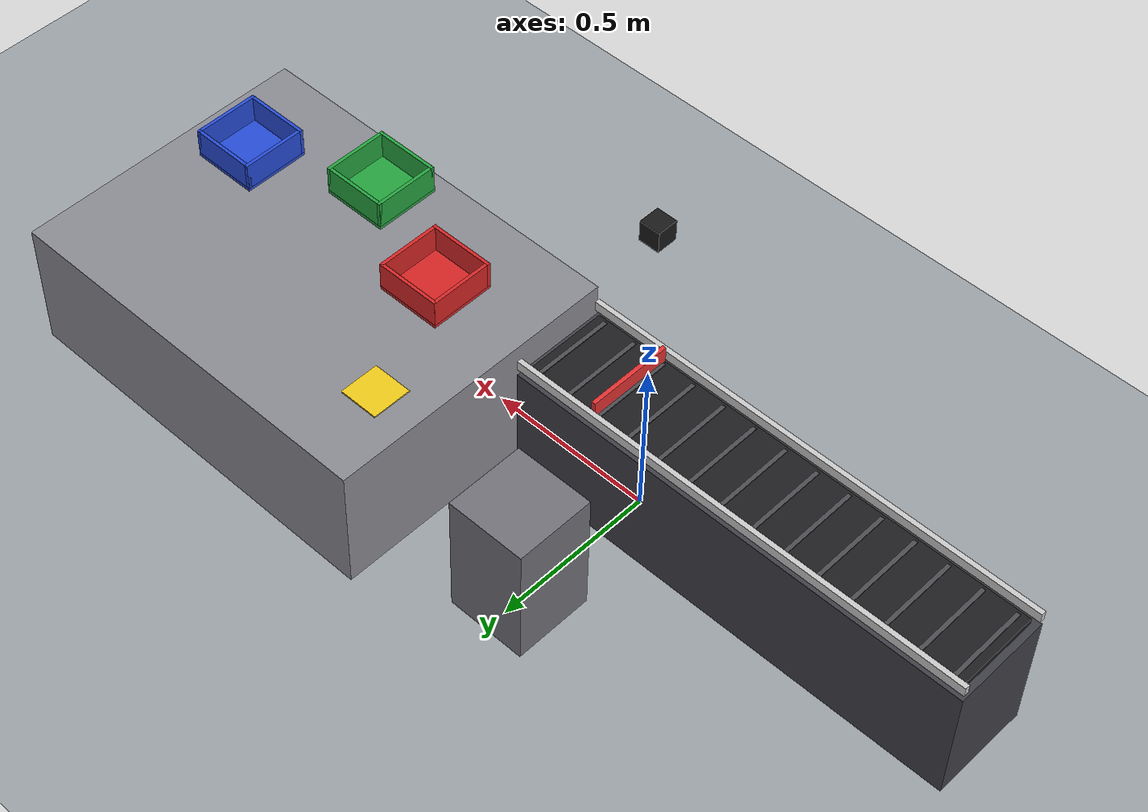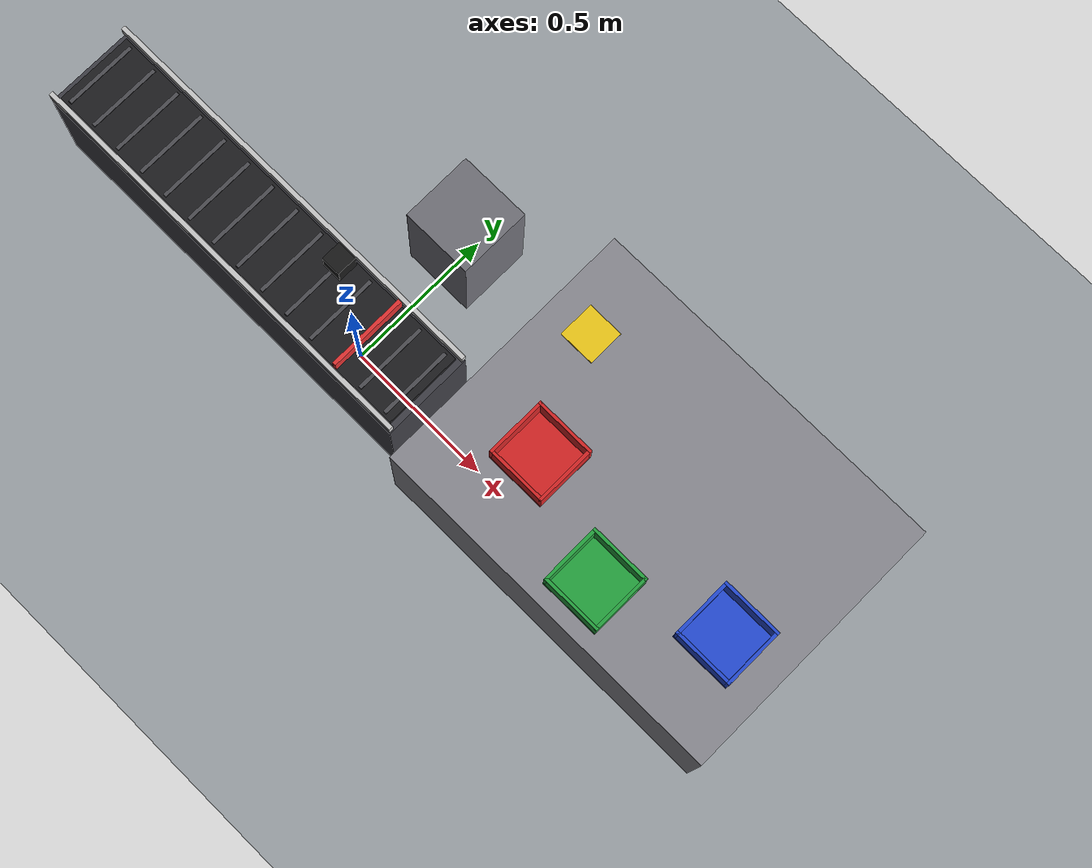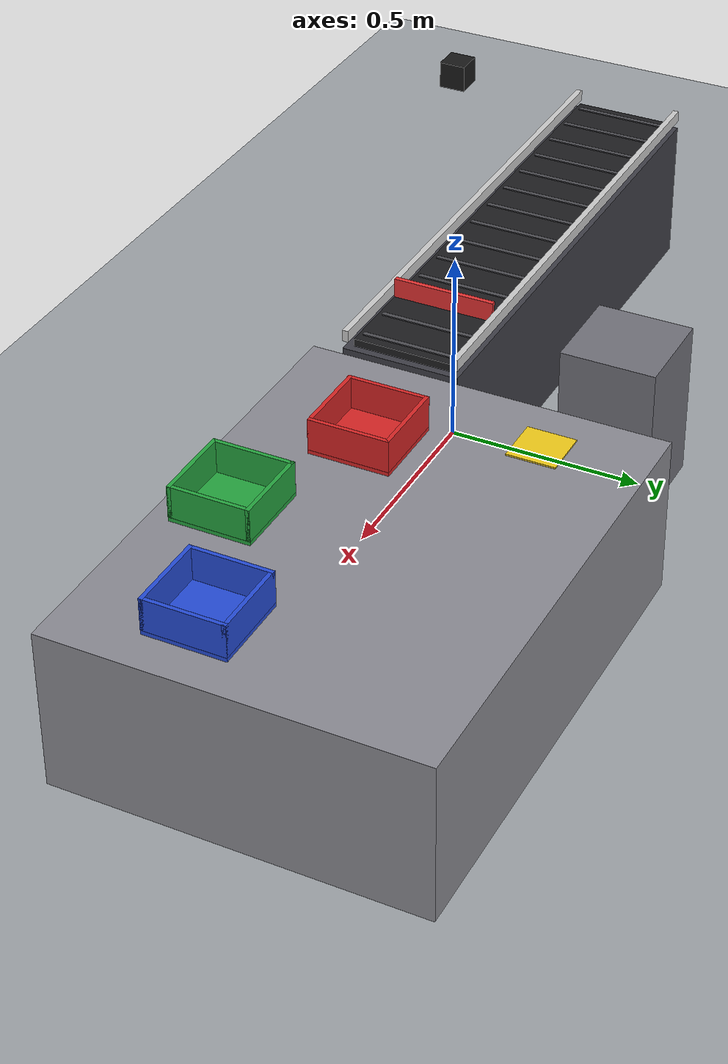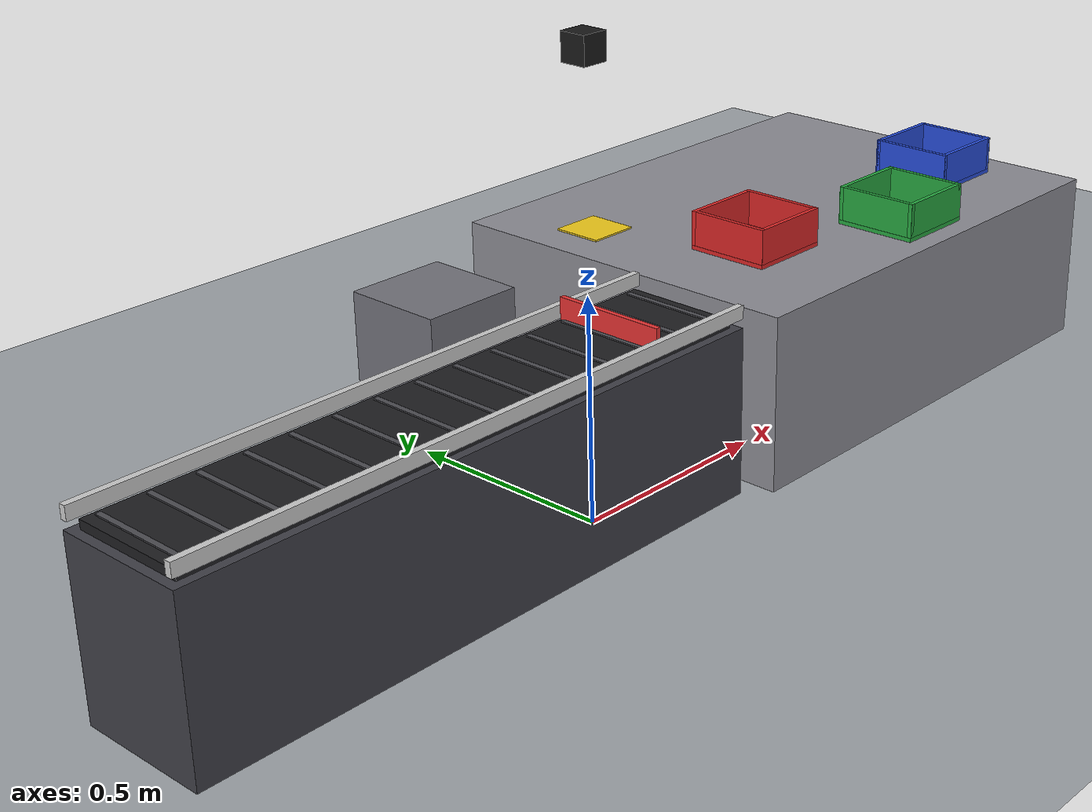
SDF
<sdf version="1.9">
 <world name="industry_x">
  <physics name="1ms" type="ode">
   <max_step_size>0.002</max_step_size>
   <real_time_factor>1.0</real_time_factor>
  </physics>
  <plugin filename="gz-sim-physics-system" name="gz::sim::systems::Physics"/>
  <plugin filename="gz-sim-user-commands-system" name="gz::sim::systems::UserCommands"/>
  <plugin filename="gz-sim-scene-broadcaster-system" name="gz::sim::systems::SceneBroadcaster"/>
  <plugin filename="gz-sim-sensors-system" name="gz::sim::systems::Sensors">
   <render_engine>ogre2</render_engine>
  </plugin>
  <scene>
   <ambient>0.5 0.5 0.5 1</ambient>
   <background>0.78 0.85 0.95 1</background>
   <shadows>true</shadows>
  </scene>
  <light type="directional" name="sun">
   <pose>0 0 6 0 0 0</pose>
   <diffuse>0.9 0.9 0.9 1</diffuse>
   <specular>0.3 0.3 0.3 1</specular>
   <direction>-0.4 0.3 -0.9</direction>
  </light>
  <model name="ground">
   <static>true</static>
   <link name="l">
    <collision name="c"><geometry><plane><normal>0 0 1</normal><size>20 20</size></plane></geometry></collision>
    <visual name="v">
     <geometry><plane><normal>0 0 1</normal><size>20 20</size></plane></geometry>
     <material>
      <ambient>0.62 0.64 0.66 1.0</ambient>
      <diffuse>0.62 0.64 0.66 1.0</diffuse>
      <specular>0.2 0.2 0.2 1</specular>
     </material>
    </visual>
   </link>
  </model>
  <model name="work_table">
   <static>true</static>
   <pose>0.95 0.24999999999999997 0.2 0 0 0</pose>
   <link name="l">
    <visual name="v">
     <geometry><box><size>1.2000000000000002 0.8999999999999999 0.4</size></box></geometry>
     <material>
      <ambient>0.55 0.55 0.58 1.0</ambient>
      <diffuse>0.55 0.55 0.58 1.0</diffuse>
      <specular>0.2 0.2 0.2 1</specular>
     </material>
    </visual>
    <collision name="v_c">
     <geometry><box><size>1.2000000000000002 0.8999999999999999 0.4</size></box></geometry>
    </collision>
   </link>
  </model>
  <model name="pedestal_a">
   <static>true</static>
   <pose>0.0 0.45 0.2 0 0 0</pose>
   <link name="l">
    <visual name="v">
     <geometry><box><size>0.24 0.24 0.4</size></box></geometry>
     <material>
      <ambient>0.45 0.45 0.48 1.0</ambient>
      <diffuse>0.45 0.45 0.48 1.0</diffuse>
      <specular>0.2 0.2 0.2 1</specular>
     </material>
    </visual>
    <collision name="v_c"><geometry><box><size>0.24 0.24 0.4</size></box></geometry></collision>
   </link>
  </model>
  <model name="conveyor">
   <static>true</static>
   <pose>-0.4 0.0 0 0 0 0</pose>
   <link name="l">
    <visual name="body">
     <pose>0 0 0.19 0 0 0</pose>
     <geometry><box><size>1.4000000000000001 0.3 0.38</size></box></geometry>
     <material>
      <ambient>0.25 0.25 0.28 1.0</ambient>
      <diffuse>0.25 0.25 0.28 1.0</diffuse>
      <specular>0.2 0.2 0.2 1</specular>
     </material>
    </visual>
    <collision name="body_c">
     <pose>0 0 0.19 0 0 0</pose>
     <geometry><box><size>1.4000000000000001 0.3 0.38</size></box></geometry>
    </collision>
    <visual name="belt">
     <pose>0 0 0.39 0 0 0</pose>
     <geometry><box><size>1.36 0.26 0.02</size></box></geometry>
     <material>
      <ambient>0.12 0.12 0.13 1.0</ambient>
      <diffuse>0.12 0.12 0.13 1.0</diffuse>
      <specular>0.2 0.2 0.2 1</specular>
     </material>
    </visual>
    <collision name="belt_c">
     <pose>0 0 0.39 0 0 0</pose>
     <geometry><box><size>1.36 0.26 0.02</size></box></geometry>
    </collision>
    <visual name="rail_l">
     <pose>0 0.1425 0.41500000000000004 0 0 0</pose>
     <geometry><box><size>1.4000000000000001 0.015 0.03</size></box></geometry>
     <material>
      <ambient>0.8 0.8 0.8 1.0</ambient>
      <diffuse>0.8 0.8 0.8 1.0</diffuse>
      <specular>0.2 0.2 0.2 1</specular>
     </material>
    </visual>
    <collision name="rail_l_c">
     <pose>0 0.1425 0.41500000000000004 0 0 0</pose>
     <geometry><box><size>1.4000000000000001 0.015 0.03</size></box></geometry>
    </collision>
    <visual name="rail_r">
     <pose>0 -0.1425 0.41500000000000004 0 0 0</pose>
     <geometry><box><size>1.4000000000000001 0.015 0.03</size></box></geometry>
     <material>
      <ambient>0.8 0.8 0.8 1.0</ambient>
      <diffuse>0.8 0.8 0.8 1.0</diffuse>
      <specular>0.2 0.2 0.2 1</specular>
     </material>
    </visual>
    <collision name="rail_r_c">
     <pose>0 -0.1425 0.41500000000000004 0 0 0</pose>
     <geometry><box><size>1.4000000000000001 0.015 0.03</size></box></geometry>
    </collision>
    <visual name="groove0">
     <pose>-0.65 0 0.4015 0 0 0</pose>
     <geometry><box><size>0.012 0.24 0.003</size></box></geometry>
     <material>
      <ambient>0.3 0.3 0.32 1.0</ambient>
      <diffuse>0.3 0.3 0.32 1.0</diffuse>
      <specular>0.2 0.2 0.2 1</specular>
     </material>
    </visual>
    <visual name="groove1">
     <pose>-0.55 0 0.4015 0 0 0</pose>
     <geometry><box><size>0.012 0.24 0.003</size></box></geometry>
     <material>
      <ambient>0.3 0.3 0.32 1.0</ambient>
      <diffuse>0.3 0.3 0.32 1.0</diffuse>
      <specular>0.2 0.2 0.2 1</specular>
     </material>
    </visual>
    <visual name="groove2">
     <pose>-0.45 0 0.4015 0 0 0</pose>
     <geometry><box><size>0.012 0.24 0.003</size></box></geometry>
     <material>
      <ambient>0.3 0.3 0.32 1.0</ambient>
      <diffuse>0.3 0.3 0.32 1.0</diffuse>
      <specular>0.2 0.2 0.2 1</specular>
     </material>
    </visual>
    <visual name="groove3">
     <pose>-0.35 0 0.4015 0 0 0</pose>
     <geometry><box><size>0.012 0.24 0.003</size></box></geometry>
     <material>
      <ambient>0.3 0.3 0.32 1.0</ambient>
      <diffuse>0.3 0.3 0.32 1.0</diffuse>
      <specular>0.2 0.2 0.2 1</specular>
     </material>
    </visual>
    <visual name="groove4">
     <pose>-0.25 0 0.4015 0 0 0</pose>
     <geometry><box><size>0.012 0.24 0.003</size></box></geometry>
     <material>
      <ambient>0.3 0.3 0.32 1.0</ambient>
      <diffuse>0.3 0.3 0.32 1.0</diffuse>
      <specular>0.2 0.2 0.2 1</specular>
     </material>
    </visual>
    <visual name="groove5">
     <pose>-0.15000000000000002 0 0.4015 0 0 0</pose>
     <geometry><box><size>0.012 0.24 0.003</size></box></geometry>
     <material>
      <ambient>0.3 0.3 0.32 1.0</ambient>
      <diffuse>0.3 0.3 0.32 1.0</diffuse>
      <specular>0.2 0.2 0.2 1</specular>
     </material>
    </visual>
    <visual name="groove6">
     <pose>-0.04999999999999993 0 0.4015 0 0 0</pose>
     <geometry><box><size>0.012 0.24 0.003</size></box></geometry>
     <material>
      <ambient>0.3 0.3 0.32 1.0</ambient>
      <diffuse>0.3 0.3 0.32 1.0</diffuse>
      <specular>0.2 0.2 0.2 1</specular>
     </material>
    </visual>
    <visual name="groove7">
     <pose>0.050000000000000044 0 0.4015 0 0 0</pose>
     <geometry><box><size>0.012 0.24 0.003</size></box></geometry>
     <material>
      <ambient>0.3 0.3 0.32 1.0</ambient>
      <diffuse>0.3 0.3 0.32 1.0</diffuse>
      <specular>0.2 0.2 0.2 1</specular>
     </material>
    </visual>
    <visual name="groove8">
     <pose>0.15000000000000002 0 0.4015 0 0 0</pose>
     <geometry><box><size>0.012 0.24 0.003</size></box></geometry>
     <material>
      <ambient>0.3 0.3 0.32 1.0</ambient>
      <diffuse>0.3 0.3 0.32 1.0</diffuse>
      <specular>0.2 0.2 0.2 1</specular>
     </material>
    </visual>
    <visual name="groove9">
     <pose>0.25 0 0.4015 0 0 0</pose>
     <geometry><box><size>0.012 0.24 0.003</size></box></geometry>
     <material>
      <ambient>0.3 0.3 0.32 1.0</ambient>
      <diffuse>0.3 0.3 0.32 1.0</diffuse>
      <specular>0.2 0.2 0.2 1</specular>
     </material>
    </visual>
    <visual name="groove10">
     <pose>0.35 0 0.4015 0 0 0</pose>
     <geometry><box><size>0.012 0.24 0.003</size></box></geometry>
     <material>
      <ambient>0.3 0.3 0.32 1.0</ambient>
      <diffuse>0.3 0.3 0.32 1.0</diffuse>
      <specular>0.2 0.2 0.2 1</specular>
     </material>
    </visual>
    <visual name="groove11">
     <pose>0.45000000000000007 0 0.4015 0 0 0</pose>
     <geometry><box><size>0.012 0.24 0.003</size></box></geometry>
     <material>
      <ambient>0.3 0.3 0.32 1.0</ambient>
      <diffuse>0.3 0.3 0.32 1.0</diffuse>
      <specular>0.2 0.2 0.2 1</specular>
     </material>
    </visual>
    <visual name="groove12">
     <pose>0.5500000000000002 0 0.4015 0 0 0</pose>
     <geometry><box><size>0.012 0.24 0.003</size></box></geometry>
     <material>
      <ambient>0.3 0.3 0.32 1.0</ambient>
      <diffuse>0.3 0.3 0.32 1.0</diffuse>
      <specular>0.2 0.2 0.2 1</specular>
     </material>
    </visual>
    <visual name="groove13">
     <pose>0.65 0 0.4015 0 0 0</pose>
     <geometry><box><size>0.012 0.24 0.003</size></box></geometry>
     <material>
      <ambient>0.3 0.3 0.32 1.0</ambient>
      <diffuse>0.3 0.3 0.32 1.0</diffuse>
      <specular>0.2 0.2 0.2 1</specular>
     </material>
    </visual>
    <visual name="stopper">
     <pose>0.46 0 0.42500000000000004 0 0 0</pose>
     <geometry><box><size>0.012 0.26 0.05</size></box></geometry>
     <material>
      <ambient>0.9 0.2 0.2 1.0</ambient>
      <diffuse>0.9 0.2 0.2 1.0</diffuse>
      <specular>0.2 0.2 0.2 1</specular>
     </material>
    </visual>
    <collision name="stopper_c">
     <pose>0.46 0 0.42500000000000004 0 0 0</pose>
     <geometry><box><size>0.012 0.26 0.05</size></box></geometry>
    </collision>
   </link>
  </model>
  <model name="transfer_pad">
   <static>true</static>
   <pose>0.5 0.45 0.402 0 0 0</pose>
   <link name="l">
    <visual name="v">
     <geometry><box><size>0.12 0.12 0.004</size></box></geometry>
     <material>
      <ambient>0.95 0.8 0.1 1.0</ambient>
      <diffuse>0.95 0.8 0.1 1.0</diffuse>
      <specular>0.2 0.2 0.2 1</specular>
     </material>
    </visual>
    <collision name="v_c"><geometry><box><size>0.12 0.12 0.004</size></box></geometry></collision>
   </link>
  </model>
  <model name="bin_A">
   <static>true</static>
   <pose>0.6464466094067263 0.09644660940672628 0 0 0 0</pose>
   <link name="l">
    <visual name="floor">
     <pose>0 0 0.405 0 0 0</pose>
     <geometry><box><size>0.2 0.2 0.01</size></box></geometry>
     <material>
      <ambient>0.85 0.15 0.15 1.0</ambient>
      <diffuse>0.85 0.15 0.15 1.0</diffuse>
      <specular>0.2 0.2 0.2 1</specular>
     </material>
    </visual>
    <collision name="floor_c">
     <pose>0 0 0.405 0 0 0</pose>
     <geometry><box><size>0.2 0.2 0.01</size></box></geometry>
    </collision>
    <visual name="w1">
     <pose>0 0.095 0.45 0 0 0</pose>
     <geometry><box><size>0.2 0.01 0.08</size></box></geometry>
     <material>
      <ambient>0.85 0.15 0.15 1.0</ambient>
      <diffuse>0.85 0.15 0.15 1.0</diffuse>
      <specular>0.2 0.2 0.2 1</specular>
     </material>
    </visual>
    <collision name="w1_c">
     <pose>0 0.095 0.45 0 0 0</pose>
     <geometry><box><size>0.2 0.01 0.08</size></box></geometry>
    </collision>
    <visual name="w2">
     <pose>0 -0.095 0.45 0 0 0</pose>
     <geometry><box><size>0.2 0.01 0.08</size></box></geometry>
     <material>
      <ambient>0.85 0.15 0.15 1.0</ambient>
      <diffuse>0.85 0.15 0.15 1.0</diffuse>
      <specular>0.2 0.2 0.2 1</specular>
     </material>
    </visual>
    <collision name="w2_c">
     <pose>0 -0.095 0.45 0 0 0</pose>
     <geometry><box><size>0.2 0.01 0.08</size></box></geometry>
    </collision>
    <visual name="w3">
     <pose>0.095 0 0.45 0 0 0</pose>
     <geometry><box><size>0.01 0.2 0.08</size></box></geometry>
     <material>
      <ambient>0.85 0.15 0.15 1.0</ambient>
      <diffuse>0.85 0.15 0.15 1.0</diffuse>
      <specular>0.2 0.2 0.2 1</specular>
     </material>
    </visual>
    <collision name="w3_c">
     <pose>0.095 0 0.45 0 0 0</pose>
     <geometry><box><size>0.01 0.2 0.08</size></box></geometry>
    </collision>
    <visual name="w4">
     <pose>-0.095 0 0.45 0 0 0</pose>
     <geometry><box><size>0.01 0.2 0.08</size></box></geometry>
     <material>
      <ambient>0.85 0.15 0.15 1.0</ambient>
      <diffuse>0.85 0.15 0.15 1.0</diffuse>
      <specular>0.2 0.2 0.2 1</specular>
     </material>
    </visual>
    <collision name="w4_c">
     <pose>-0.095 0 0.45 0 0 0</pose>
     <geometry><box><size>0.01 0.2 0.08</size></box></geometry>
    </collision>
   </link>
  </model>
  <model name="bin_B">
   <static>true</static>
   <pose>1.0 -0.04999999999999999 0 0 0 0</pose>
   <link name="l">
    <visual name="floor">
     <pose>0 0 0.405 0 0 0</pose>
     <geometry><box><size>0.2 0.2 0.01</size></box></geometry>
     <material>
      <ambient>0.15 0.65 0.25 1.0</ambient>
      <diffuse>0.15 0.65 0.25 1.0</diffuse>
      <specular>0.2 0.2 0.2 1</specular>
     </material>
    </visual>
    <collision name="floor_c">
     <pose>0 0 0.405 0 0 0</pose>
     <geometry><box><size>0.2 0.2 0.01</size></box></geometry>
    </collision>
    <visual name="w1">
     <pose>0 0.095 0.45 0 0 0</pose>
     <geometry><box><size>0.2 0.01 0.08</size></box></geometry>
     <material>
      <ambient>0.15 0.65 0.25 1.0</ambient>
      <diffuse>0.15 0.65 0.25 1.0</diffuse>
      <specular>0.2 0.2 0.2 1</specular>
     </material>
    </visual>
    <collision name="w1_c">
     <pose>0 0.095 0.45 0 0 0</pose>
     <geometry><box><size>0.2 0.01 0.08</size></box></geometry>
    </collision>
    <visual name="w2">
     <pose>0 -0.095 0.45 0 0 0</pose>
     <geometry><box><size>0.2 0.01 0.08</size></box></geometry>
     <material>
      <ambient>0.15 0.65 0.25 1.0</ambient>
      <diffuse>0.15 0.65 0.25 1.0</diffuse>
      <specular>0.2 0.2 0.2 1</specular>
     </material>
    </visual>
    <collision name="w2_c">
     <pose>0 -0.095 0.45 0 0 0</pose>
     <geometry><box><size>0.2 0.01 0.08</size></box></geometry>
    </collision>
    <visual name="w3">
     <pose>0.095 0 0.45 0 0 0</pose>
     <geometry><box><size>0.01 0.2 0.08</size></box></geometry>
     <material>
      <ambient>0.15 0.65 0.25 1.0</ambient>
      <diffuse>0.15 0.65 0.25 1.0</diffuse>
      <specular>0.2 0.2 0.2 1</specular>
     </material>
    </visual>
    <collision name="w3_c">
     <pose>0.095 0 0.45 0 0 0</pose>
     <geometry><box><size>0.01 0.2 0.08</size></box></geometry>
    </collision>
    <visual name="w4">
     <pose>-0.095 0 0.45 0 0 0</pose>
     <geometry><box><size>0.01 0.2 0.08</size></box></geometry>
     <material>
      <ambient>0.15 0.65 0.25 1.0</ambient>
      <diffuse>0.15 0.65 0.25 1.0</diffuse>
      <specular>0.2 0.2 0.2 1</specular>
     </material>
    </visual>
    <collision name="w4_c">
     <pose>-0.095 0 0.45 0 0 0</pose>
     <geometry><box><size>0.01 0.2 0.08</size></box></geometry>
    </collision>
   </link>
  </model>
  <model name="bin_C">
   <static>true</static>
   <pose>1.3535533905932737 0.09644660940672628 0 0 0 0</pose>
   <link name="l">
    <visual name="floor">
     <pose>0 0 0.405 0 0 0</pose>
     <geometry><box><size>0.2 0.2 0.01</size></box></geometry>
     <material>
      <ambient>0.15 0.3 0.85 1.0</ambient>
      <diffuse>0.15 0.3 0.85 1.0</diffuse>
      <specular>0.2 0.2 0.2 1</specular>
     </material>
    </visual>
    <collision name="floor_c">
     <pose>0 0 0.405 0 0 0</pose>
     <geometry><box><size>0.2 0.2 0.01</size></box></geometry>
    </collision>
    <visual name="w1">
     <pose>0 0.095 0.45 0 0 0</pose>
     <geometry><box><size>0.2 0.01 0.08</size></box></geometry>
     <material>
      <ambient>0.15 0.3 0.85 1.0</ambient>
      <diffuse>0.15 0.3 0.85 1.0</diffuse>
      <specular>0.2 0.2 0.2 1</specular>
     </material>
    </visual>
    <collision name="w1_c">
     <pose>0 0.095 0.45 0 0 0</pose>
     <geometry><box><size>0.2 0.01 0.08</size></box></geometry>
    </collision>
    <visual name="w2">
     <pose>0 -0.095 0.45 0 0 0</pose>
     <geometry><box><size>0.2 0.01 0.08</size></box></geometry>
     <material>
      <ambient>0.15 0.3 0.85 1.0</ambient>
      <diffuse>0.15 0.3 0.85 1.0</diffuse>
      <specular>0.2 0.2 0.2 1</specular>
     </material>
    </visual>
    <collision name="w2_c">
     <pose>0 -0.095 0.45 0 0 0</pose>
     <geometry><box><size>0.2 0.01 0.08</size></box></geometry>
    </collision>
    <visual name="w3">
     <pose>0.095 0 0.45 0 0 0</pose>
     <geometry><box><size>0.01 0.2 0.08</size></box></geometry>
     <material>
      <ambient>0.15 0.3 0.85 1.0</ambient>
      <diffuse>0.15 0.3 0.85 1.0</diffuse>
      <specular>0.2 0.2 0.2 1</specular>
     </material>
    </visual>
    <collision name="w3_c">
     <pose>0.095 0 0.45 0 0 0</pose>
     <geometry><box><size>0.01 0.2 0.08</size></box></geometry>
    </collision>
    <visual name="w4">
     <pose>-0.095 0 0.45 0 0 0</pose>
     <geometry><box><size>0.01 0.2 0.08</size></box></geometry>
     <material>
      <ambient>0.15 0.3 0.85 1.0</ambient>
      <diffuse>0.15 0.3 0.85 1.0</diffuse>
      <specular>0.2 0.2 0.2 1</specular>
     </material>
    </visual>
    <collision name="w4_c">
     <pose>-0.095 0 0.45 0 0 0</pose>
     <geometry><box><size>0.01 0.2 0.08</size></box></geometry>
    </collision>
   </link>
  </model>
  <model name="overhead_camera">
   <static>true</static>
   <pose>0.0 0.0 1.0 0 1.5708 0</pose>
   <link name="l">
    <visual name="body">
     <geometry><box><size>0.06 0.06 0.06</size></box></geometry>
     <material>
      <ambient>0.1 0.1 0.1 1.0</ambient>
      <diffuse>0.1 0.1 0.1 1.0</diffuse>
      <specular>0.2 0.2 0.2 1</specular>
     </material>
    </visual>
    <sensor name="cam" type="camera">
     <always_on>1</always_on>
     <update_rate>10</update_rate>
     <topic>/camera/image</topic>
     <camera>
      <horizontal_fov>1.0</horizontal_fov>
      <image><width>320</width><height>240</height><format>R8G8B8</format></image>
      <clip><near>0.1</near><far>3</far></clip>
     </camera>
    </sensor>
   </link>
  </model>
 </world>
</sdf>
